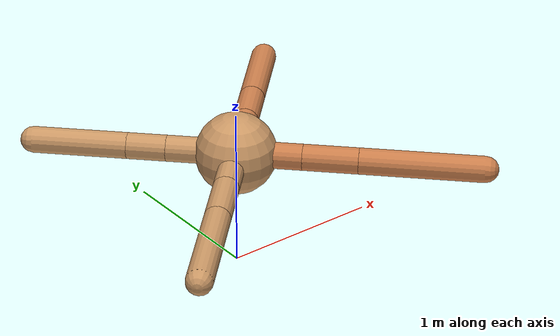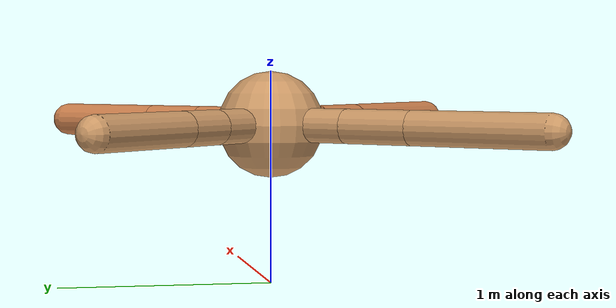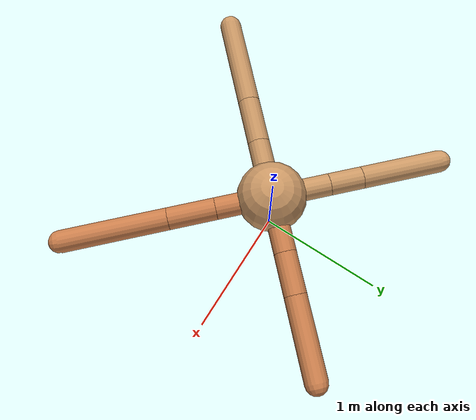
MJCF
<mujoco model="ant">
  <compiler angle="degree" coordinate="local" inertiafromgeom="true" />
  <option integrator="RK4" timestep="0.01" />
  <custom>
    <numeric data="0.0 0.0 0.55 1.0 0.0 0.0 0.0 0.0 1.0 0.0 -1.0 0.0 -1.0 0.0 1.0" name="init_qpos" />
  </custom>
  <default>
    <joint armature="1" damping="1" limited="true" />
    <geom conaffinity="0" condim="3" density="5.0" friction="1.5 0.1 0.1" margin="0.01" rgba="0.8 0.6 0.4 1" />
  </default>
  <worldbody>
    <body name="torso" pos="0 0 0.75">
      <geom name="torso_geom" pos="0 0 0" size="0.25" type="sphere" />

      <body name="front_left_leg" pos="0 0 0">
        <geom fromto="0.0 0.0 0.0 0.2902142794276709 0.2902142794276709 0.0" name="aux_1_geom" size="0.08" type="capsule" rgba=".8 .5 .3 1" />
        <body name="aux_1" pos="0.2902142794276709 0.2902142794276709 0.0">
          <joint axis="0 0 1" name="hip_1" pos="0.0 0.0 0.0" range="-40 40" type="hinge" />
          <geom fromto="0.0 0.0 0.0 0.20832356524870385 0.20832356524870385 0.0" name="left_leg_geom" size="0.08" type="capsule" rgba=".8 .5 .3 1" />
          <body pos="0.20832356524870385 0.20832356524870385 0.0" name="front_left_foot">
            <joint axis="-1 1 0" name="ankle_1" pos="0.0 0.0 0.0" range="30 100" type="hinge" />
            <geom fromto="0.0 0.0 0.0 0.398926262543133 0.398926262543133 0.0" name="left_ankle_geom" size="0.08" type="capsule" rgba=".8 .5 .3 1" />
          </body>
        </body>
      </body>
      <body name="front_right_leg" pos="0 0 0">
        <geom fromto="0.0 0.0 0.0 -0.2978691069923025 0.2978691069923025 0.0" name="aux_2_geom" size="0.08" type="capsule" />
        <body name="aux_2" pos="-0.2978691069923025 0.2978691069923025 0.0">
          <joint axis="0 0 1" name="hip_2" pos="0.0 0.0 0.0" range="-40 40" type="hinge" />
          <geom fromto="0.0 0.0 0.0 -0.1695679822875119 0.1695679822875119 0.0" name="right_leg_geom" size="0.08" type="capsule" />
          <body pos="-0.1695679822875119 0.1695679822875119 0.0" name="front_right_foot">
            <joint axis="1 1 0" name="ankle_2" pos="0.0 0.0 0.0" range="-100 -30" type="hinge" />
            <geom fromto="0.0 0.0 0.0 -0.40888600500236505 0.40888600500236505 0.0" name="right_ankle_geom" size="0.08" type="capsule" />
          </body>
        </body>
      </body>
      <body name="left_back_leg" pos="0 0 0">
        <geom fromto="0.0 0.0 0.0 -0.2955282746532271 -0.2955282746532271 0.0" name="aux_3_geom" size="0.08" type="capsule" />
        <body name="aux_3" pos="-0.2955282746532271 -0.2955282746532271 0.0">
          <joint axis="0 0 1" name="hip_3" pos="0.0 0.0 0.0" range="-40 40" type="hinge" />
          <geom fromto="0.0 0.0 0.0 -0.23921295514144544 -0.23921295514144544 0.0" name="back_leg_geom" size="0.08" type="capsule" />
          <body pos="-0.23921295514144544 -0.23921295514144544 0.0" name="left_back_foot">
            <joint axis="-1 1 0" name="ankle_3" pos="0.0 0.0 0.0" range="-100 -30" type="hinge" />
            <geom fromto="0.0 0.0 0.0 -0.47438534660534803 -0.47438534660534803 0.0" name="third_ankle_geom" size="0.08" type="capsule" />
          </body>
        </body>
      </body>
      <body name="right_back_leg" pos="0 0 0">
        <geom fromto="0.0 0.0 0.0 0.28481521292574036 -0.28481521292574036 0.0" name="aux_4_geom" size="0.08" type="capsule" rgba=".8 .5 .3 1" />
        <body name="aux_4" pos="0.28481521292574036 -0.28481521292574036 0.0">
          <joint axis="0 0 1" name="hip_4" pos="0.0 0.0 0.0" range="-40 40" type="hinge" />
          <geom fromto="0.0 0.0 0.0 0.2390541497477855 -0.2390541497477855 0.0" name="rightback_leg_geom" size="0.08" type="capsule" rgba=".8 .5 .3 1" />
          <body pos="0.2390541497477855 -0.2390541497477855 0.0" name="right_back_foot">
            <joint axis="1 1 0" name="ankle_4" pos="0.0 0.0 0.0" range="30 100" type="hinge" />
            <geom fromto="0.0 0.0 0.0 0.5329022770085424 -0.5329022770085424 0.0" name="fourth_ankle_geom" size="0.08" type="capsule" rgba=".8 .5 .3 1" />
          </body>
        </body>
      </body>
    </body>
  </worldbody>
  <actuator>
    <motor ctrllimited="true" ctrlrange="-1.0 1.0" joint="hip_4" gear="150" />
    <motor ctrllimited="true" ctrlrange="-1.0 1.0" joint="ankle_4" gear="150" />
    <motor ctrllimited="true" ctrlrange="-1.0 1.0" joint="hip_1" gear="150" />
    <motor ctrllimited="true" ctrlrange="-1.0 1.0" joint="ankle_1" gear="150" />
    <motor ctrllimited="true" ctrlrange="-1.0 1.0" joint="hip_2" gear="150" />
    <motor ctrllimited="true" ctrlrange="-1.0 1.0" joint="ankle_2" gear="150" />
    <motor ctrllimited="true" ctrlrange="-1.0 1.0" joint="hip_3" gear="150" />
    <motor ctrllimited="true" ctrlrange="-1.0 1.0" joint="ankle_3" gear="150" />
  </actuator>
</mujoco>
